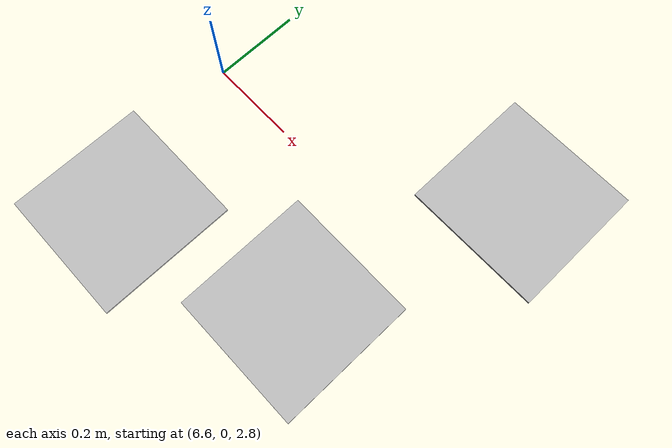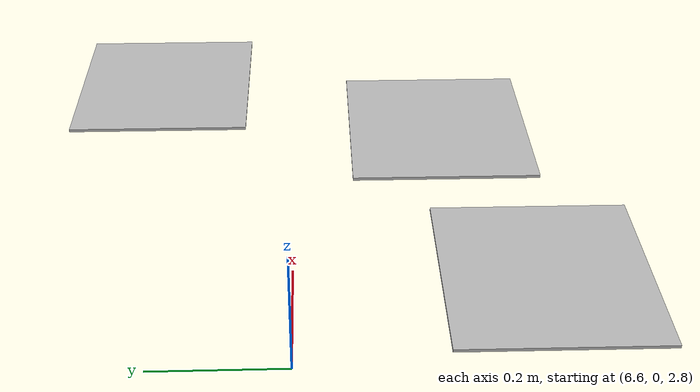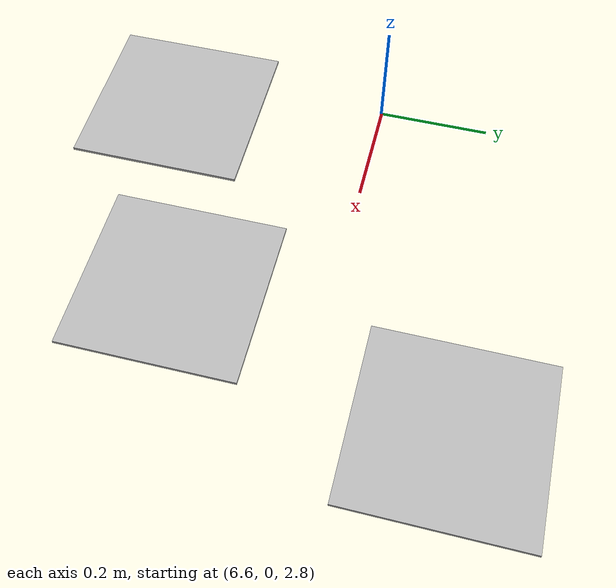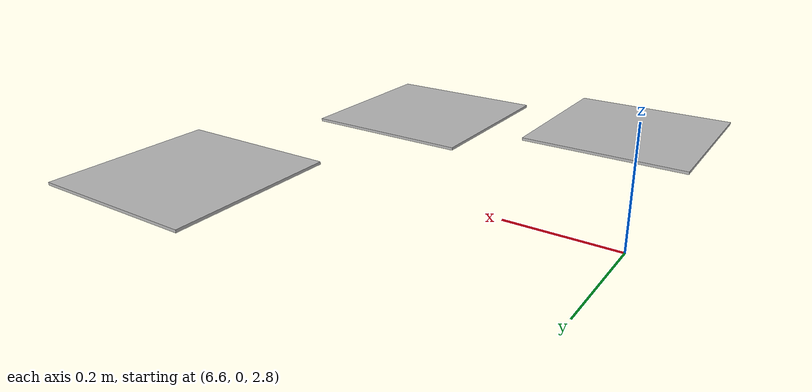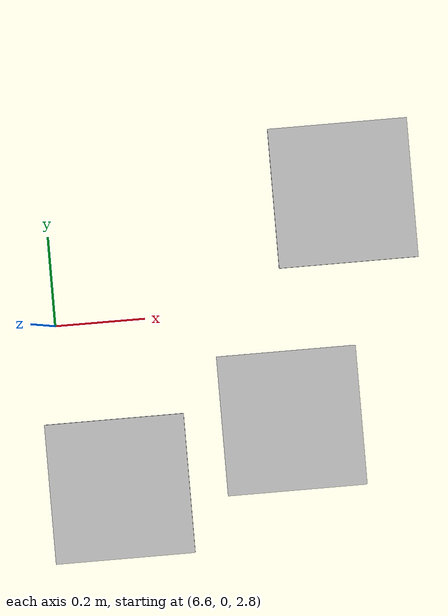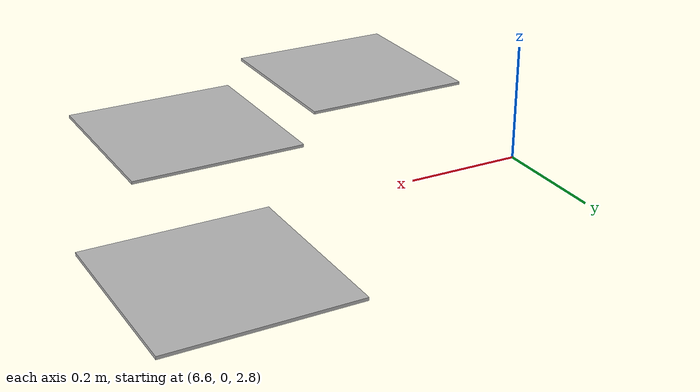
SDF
<sdf version="1.6">
 <world name="vrc_task_1">
  <model name="3_3_clone_8_clone_8">
   <static>1</static>
   <link name="link">
    <collision name="collision"><geometry><box><size>0.3 0.3 0.005</size></box></geometry></collision>
    <visual name="visual">
     <cast_shadows>0</cast_shadows>
     <geometry><box><size>0.3 0.3 0.005</size></box></geometry>
     <material>
      <script>
       <uri>model://3_3/materials/scripts</uri>
       <uri>model://3_3/materials/textures</uri>
       <name>3_3</name>
      </script>
     </material>
    </visual>
   </link>
   <pose>6.72185 -0.361576 2.85801 0 -0 0</pose>
  </model>
  <model name="3_3_clone_8_clone_12">
   <static>1</static>
   <link name="link">
    <collision name="collision"><geometry><box><size>0.3 0.3 0.005</size></box></geometry></collision>
    <visual name="visual">
     <cast_shadows>0</cast_shadows>
     <geometry><box><size>0.3 0.3 0.005</size></box></geometry>
     <material>
      <script>
       <uri>model://3_3/materials/scripts</uri>
       <uri>model://3_3/materials/textures</uri>
       <name>3_3</name>
      </script>
     </material>
    </visual>
   </link>
   <pose>7.25325 0.230886 2.85801 0 -0 0</pose>
  </model>
  <model name="3_3_clone_8_clone_36">
   <static>1</static>
   <link name="link">
    <collision name="collision"><geometry><box><size>0.3 0.3 0.005</size></box></geometry></collision>
    <visual name="visual">
     <cast_shadows>0</cast_shadows>
     <geometry><box><size>0.3 0.3 0.005</size></box></geometry>
     <material>
      <script>
       <uri>model://3_3/materials/scripts</uri>
       <uri>model://3_3/materials/textures</uri>
       <name>3_3</name>
      </script>
     </material>
    </visual>
   </link>
   <pose>7.10224 -0.246789 2.85801 0 -0 0</pose>
  </model>
 </world>
</sdf>
